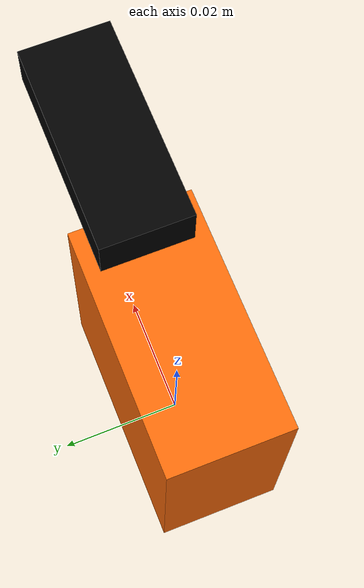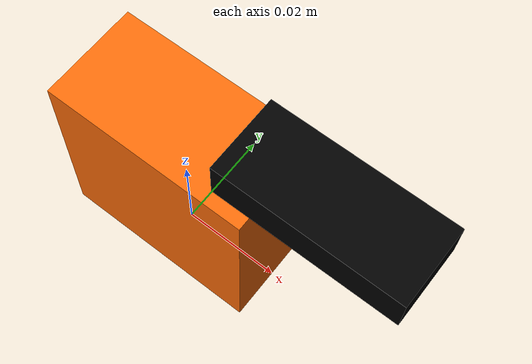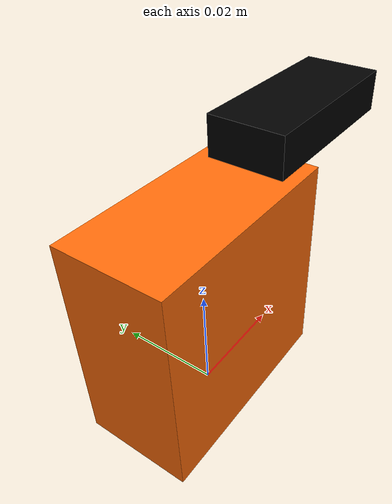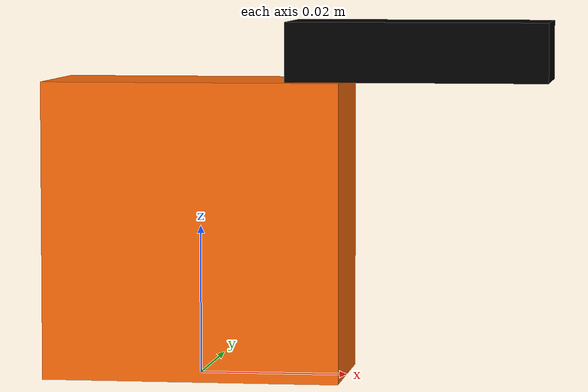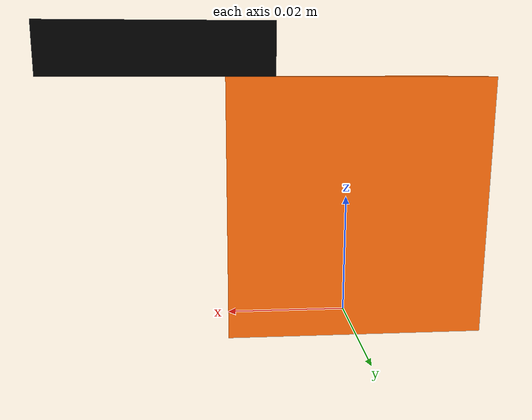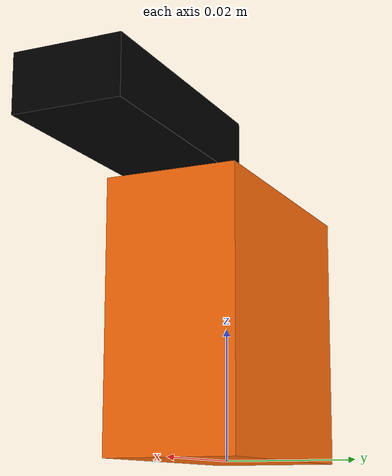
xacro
<?xml version="1.0"?>
<!-- Copied from https://github.com/ros-controls/ros2_control_demos -->
<!-- Basic differential drive mobile base -->
<robot xmlns:xacro="http://www.ros.org/wiki/xacro" name="position_servo">
  <xacro:arg name="prefix" default="" />

  <xacro:include filename="$(find pca9685_ros2_control_example)/description/position_servo_description.urdf.xacro" />

  <!-- Import Rviz colors -->
  <xacro:include filename="$(find pca9685_ros2_control_example)/description/diffbot.materials.xacro" />

  <!-- Import ros2_control description -->
  <xacro:include filename="$(find pca9685_ros2_control_example)/description/position_servo.ros2_control.xacro" />

  <!-- Used for fixing robot -->
  <link name="world"/>

  <xacro:position_servo parent="world" prefix="$(arg prefix)">
    <origin xyz="0 0 0" rpy="0 0 0" />
  </xacro:position_servo>

  <xacro:position_servo_ros2_control
    name="PositionServo" prefix="$(arg prefix)"/>

</robot>

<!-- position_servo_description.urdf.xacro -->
<!-- Copied from https://github.com/ros-controls/ros2_control_demos -->
<robot xmlns:xacro="http://www.ros.org/wiki/xacro">

  <xacro:macro name="position_servo" params="prefix parent *origin">

  <joint name="${prefix}base_joint" type="fixed">
    <xacro:insert_block name="origin" />
    <parent link="${parent}"/>
    <child link="${prefix}base_link" />
  </joint>

  <!-- Base Link -->
  <link name="${prefix}base_link">
    <collision>
      <origin xyz="0 0 0.02" rpy="0 0 0"/>
      <geometry>
        <box size="0.04 0.02 0.04"/>
      </geometry>
    </collision>
    <visual>
      <origin xyz="0 0 0.02" rpy="0 0 0"/>
      <geometry>
        <box size="0.04 0.02 0.04"/>
      </geometry>
      <material name="orange"/>
    </visual>
    </link>

    <link name="${prefix}arm">
      <collision>
        <origin xyz="0.015 0 0.004" rpy="0 0 0"/>
        <geometry>
          <box size="0.035 0.015 0.008"/>
        </geometry>
      </collision>
      <visual>
        <origin xyz="0.015 0 0.004" rpy="0 0 0"/>
        <geometry>
          <box size="0.035 0.015 0.008"/>
        </geometry>
        <material name="black"/>
      </visual>
      </link>

    <joint name="${prefix}joint_0" type="revolute">
      <parent link="${prefix}base_link"/>
      <child link="${prefix}arm"/>
      <origin xyz="0.015 0 0.04" rpy="0 0 0"/>
      <axis xyz="0 0 1"/>
      <limit lower="-1.57" upper="2.3" effort="100" velocity="1.0"/>
    </joint>

  </xacro:macro>

</robot>

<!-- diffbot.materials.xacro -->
<!-- Copied from https://github.com/ros-controls/ros2_control_demos -->
<!--
Copied from ROS1 example:
https://github.com/ros-simulation/gazebo_ros_demos/blob/kinetic-devel/rrbot_description/urdf/materials.xacro
-->
<robot>

  <material name="black">
    <color rgba="0.0 0.0 0.0 1.0"/>
  </material>

  <material name="blue">
    <color rgba="0.0 0.0 0.8 1.0"/>
  </material>

  <material name="green">
    <color rgba="0.0 0.8 0.0 1.0"/>
  </material>

  <material name="grey">
    <color rgba="0.2 0.2 0.2 1.0"/>
  </material>

  <material name="orange">
    <color rgba="${255/255} ${108/255} ${10/255} 1.0"/>
  </material>

  <material name="brown">
    <color rgba="${222/255} ${207/255} ${195/255} 1.0"/>
  </material>

  <material name="red">
    <color rgba="0.8 0.0 0.0 1.0"/>
  </material>

  <material name="white">
    <color rgba="1.0 1.0 1.0 1.0"/>
  </material>

</robot>
